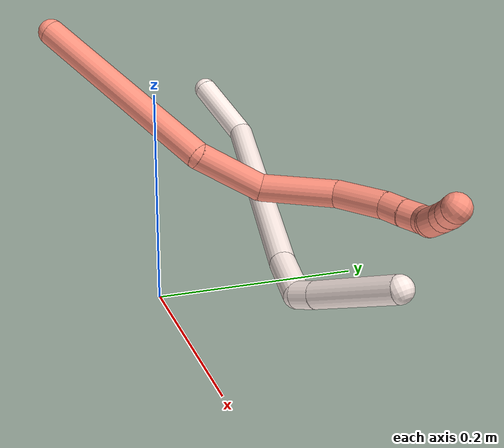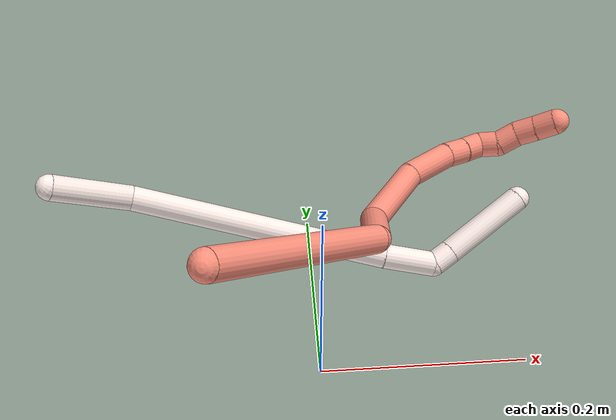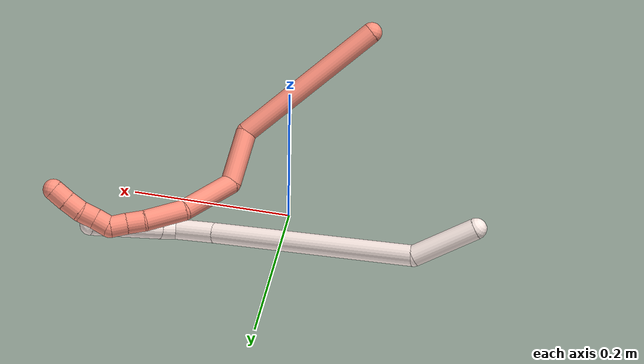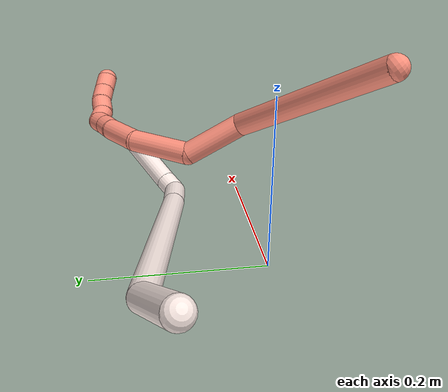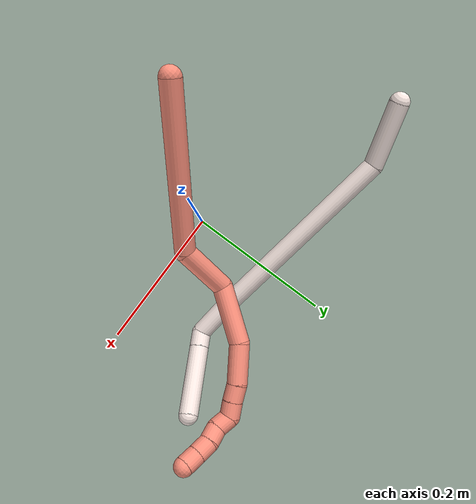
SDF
<sdf version="1.7">
 <world name="default">
  <model name="11">
   <static>0</static>
   <link name="11">
    <collision name="collision-cylinder-e_1_1_4">
     <pose>0.007926 -0.011685 0.037194 0.304399 0.200577 0.030867</pose>
     <geometry><cylinder><radius>0.0125</radius><length>0.079567</length></cylinder></geometry>
     <surface>
      <friction><ode><mu>1.16</mu><mu2>1.16</mu2><slip1>0</slip1><slip2>0</slip2></ode></friction>
      <contact><ode><kp>1e+06</kp><kd>1</kd><max_vel>0</max_vel><min_depth>0.001</min_depth></ode></contact>
     </surface>
    </collision>
    <visual name="visual-cylinder-e_1_1_4">
     <pose>0.007926 -0.011685 0.037194 0.304399 0.200577 0.030867</pose>
     <geometry><cylinder><radius>0.0125</radius><length>0.079567</length></cylinder></geometry>
     <material><ambient>1 0.933333 0.909804 1</ambient></material>
    </visual>
    <collision name="collision-cylinder-e_2_4_5">
     <pose>0.099896 -0.040515 0.170262 0.176958 0.711942 0.065943</pose>
     <geometry><cylinder><radius>0.0125</radius><length>0.257287</length></cylinder></geometry>
     <surface>
      <friction><ode><mu>1.16</mu><mu2>1.16</mu2><slip1>0</slip1><slip2>0</slip2></ode></friction>
      <contact><ode><kp>1e+06</kp><kd>1</kd><max_vel>0</max_vel><min_depth>0.001</min_depth></ode></contact>
     </surface>
    </collision>
    <visual name="visual-cylinder-e_2_4_5">
     <pose>0.099896 -0.040515 0.170262 0.176958 0.711942 0.065943</pose>
     <geometry><cylinder><radius>0.0125</radius><length>0.257287</length></cylinder></geometry>
     <material><ambient>1 0.933333 0.909804 1</ambient></material>
    </visual>
    <collision name="collision-cylinder-e_3_5_6">
     <pose>0.20063 -0.06276 0.285217 0.261169 0.701615 0.096046</pose>
     <geometry><cylinder><radius>0.0125</radius><length>0.051717</length></cylinder></geometry>
     <surface>
      <friction><ode><mu>1.16</mu><mu2>1.16</mu2><slip1>0</slip1><slip2>0</slip2></ode></friction>
      <contact><ode><kp>1e+06</kp><kd>1</kd><max_vel>0</max_vel><min_depth>0.001</min_depth></ode></contact>
     </surface>
    </collision>
    <visual name="visual-cylinder-e_3_5_6">
     <pose>0.20063 -0.06276 0.285217 0.261169 0.701615 0.096046</pose>
     <geometry><cylinder><radius>0.0125</radius><length>0.051717</length></cylinder></geometry>
     <material><ambient>1 0.933333 0.909804 1</ambient></material>
    </visual>
    <collision name="collision-cylinder-e_4_6_7">
     <pose>0.221567 -0.076659 0.308432 1.13161 0.411842 0.263768</pose>
     <geometry><cylinder><radius>0.0125</radius><length>0.021218</length></cylinder></geometry>
     <surface>
      <friction><ode><mu>1.16</mu><mu2>1.16</mu2><slip1>0</slip1><slip2>0</slip2></ode></friction>
      <contact><ode><kp>1e+06</kp><kd>1</kd><max_vel>0</max_vel><min_depth>0.001</min_depth></ode></contact>
     </surface>
    </collision>
    <visual name="visual-cylinder-e_4_6_7">
     <pose>0.221567 -0.076659 0.308432 1.13161 0.411842 0.263768</pose>
     <geometry><cylinder><radius>0.0125</radius><length>0.021218</length></cylinder></geometry>
     <material><ambient>1 0.933333 0.909804 1</ambient></material>
    </visual>
    <collision name="collision-cylinder-e_5_7_2">
     <pose>0.2445 -0.123495 0.328009 1.18512 0.427149 0.289989</pose>
     <geometry><cylinder><radius>0.0125</radius><length>0.090211</length></cylinder></geometry>
     <surface>
      <friction><ode><mu>1.16</mu><mu2>1.16</mu2><slip1>0</slip1><slip2>0</slip2></ode></friction>
      <contact><ode><kp>1e+06</kp><kd>1</kd><max_vel>0</max_vel><min_depth>0.001</min_depth></ode></contact>
     </surface>
    </collision>
    <visual name="visual-cylinder-e_5_7_2">
     <pose>0.2445 -0.123495 0.328009 1.18512 0.427149 0.289989</pose>
     <geometry><cylinder><radius>0.0125</radius><length>0.090211</length></cylinder></geometry>
     <material><ambient>1 0.933333 0.909804 1</ambient></material>
    </visual>
    <collision name="collision-sphere-2">
     <pose>0.263186 -0.161533 0.343453 0 -0 0</pose>
     <geometry><sphere><radius>0.0125</radius></sphere></geometry>
     <surface>
      <friction><ode><mu>1.16</mu><mu2>1.16</mu2><slip1>0</slip1><slip2>0</slip2></ode></friction>
      <contact><ode><kp>1e+06</kp><kd>1</kd><max_vel>0</max_vel><min_depth>0.001</min_depth></ode></contact>
     </surface>
    </collision>
    <visual name="visual-sphere-2">
     <pose>0.263186 -0.161533 0.343453 0 -0 0</pose>
     <geometry><sphere><radius>0.0125</radius></sphere></geometry>
     <material><ambient>1 0.933333 0.909804 1</ambient></material>
    </visual>
    <collision name="collision-sphere-7">
     <pose>0.225814 -0.085458 0.312565 0 -0 0</pose>
     <geometry><sphere><radius>0.0125</radius></sphere></geometry>
     <surface>
      <friction><ode><mu>1.16</mu><mu2>1.16</mu2><slip1>0</slip1><slip2>0</slip2></ode></friction>
      <contact><ode><kp>1e+06</kp><kd>1</kd><max_vel>0</max_vel><min_depth>0.001</min_depth></ode></contact>
     </surface>
    </collision>
    <visual name="visual-sphere-7">
     <pose>0.225814 -0.085458 0.312565 0 -0 0</pose>
     <geometry><sphere><radius>0.0125</radius></sphere></geometry>
     <material><ambient>1 0.933333 0.909804 1</ambient></material>
    </visual>
    <collision name="collision-sphere-6">
     <pose>0.21732 -0.06786 0.304298 0 -0 0</pose>
     <geometry><sphere><radius>0.0125</radius></sphere></geometry>
     <surface>
      <friction><ode><mu>1.16</mu><mu2>1.16</mu2><slip1>0</slip1><slip2>0</slip2></ode></friction>
      <contact><ode><kp>1e+06</kp><kd>1</kd><max_vel>0</max_vel><min_depth>0.001</min_depth></ode></contact>
     </surface>
    </collision>
    <visual name="visual-sphere-6">
     <pose>0.21732 -0.06786 0.304298 0 -0 0</pose>
     <geometry><sphere><radius>0.0125</radius></sphere></geometry>
     <material><ambient>1 0.933333 0.909804 1</ambient></material>
    </visual>
    <collision name="collision-sphere-5">
     <pose>0.183939 -0.05766 0.266136 0 -0 0</pose>
     <geometry><sphere><radius>0.0125</radius></sphere></geometry>
     <surface>
      <friction><ode><mu>1.16</mu><mu2>1.16</mu2><slip1>0</slip1><slip2>0</slip2></ode></friction>
      <contact><ode><kp>1e+06</kp><kd>1</kd><max_vel>0</max_vel><min_depth>0.001</min_depth></ode></contact>
     </surface>
    </collision>
    <visual name="visual-sphere-5">
     <pose>0.183939 -0.05766 0.266136 0 -0 0</pose>
     <geometry><sphere><radius>0.0125</radius></sphere></geometry>
     <material><ambient>1 0.933333 0.909804 1</ambient></material>
    </visual>
    <collision name="collision-sphere-1">
     <geometry><sphere><radius>0.0125</radius></sphere></geometry>
     <surface>
      <friction><ode><mu>1.16</mu><mu2>1.16</mu2><slip1>0</slip1><slip2>0</slip2></ode></friction>
      <contact><ode><kp>1e+06</kp><kd>1</kd><max_vel>0</max_vel><min_depth>0.001</min_depth></ode></contact>
     </surface>
    </collision>
    <visual name="visual-sphere-1">
     <geometry><sphere><radius>0.0125</radius></sphere></geometry>
     <material><ambient>1 0.933333 0.909804 1</ambient></material>
    </visual>
    <collision name="collision-sphere-4">
     <pose>0.015853 -0.02337 0.074388 0 -0 0</pose>
     <geometry><sphere><radius>0.0125</radius></sphere></geometry>
     <surface>
      <friction><ode><mu>1.16</mu><mu2>1.16</mu2><slip1>0</slip1><slip2>0</slip2></ode></friction>
      <contact><ode><kp>1e+06</kp><kd>1</kd><max_vel>0</max_vel><min_depth>0.001</min_depth></ode></contact>
     </surface>
    </collision>
    <visual name="visual-sphere-4">
     <pose>0.015853 -0.02337 0.074388 0 -0 0</pose>
     <geometry><sphere><radius>0.0125</radius></sphere></geometry>
     <material><ambient>1 0.933333 0.909804 1</ambient></material>
    </visual>
    <inertial>
     <pose>0.126933 -0.054733 0.195301 0 -0 0</pose>
     <mass>0.5</mass>
     <inertia>
      <ixx>0.001304</ixx>
      <ixy>0</ixy>
      <ixz>0</ixz>
      <iyy>0.001581</iyy>
      <iyz>0</iyz>
      <izz>-0.00069</izz>
     </inertia>
    </inertial>
   </link>
   <pose>-0.243262 0.121402 0.14348 -2.55322 -0.439759 -0.738998</pose>
  </model>
  <model name="16">
   <static>0</static>
   <link name="16">
    <collision name="collision-cylinder-e_1_1_4">
     <pose>0.05606 -0.005384 -0.077626 3.07234 0.624324 2.92774</pose>
     <geometry><cylinder><radius>0.0125</radius><length>0.191807</length></cylinder></geometry>
     <surface>
      <friction><ode><mu>1.16</mu><mu2>1.16</mu2><slip1>0</slip1><slip2>0</slip2></ode></friction>
      <contact><ode><kp>1e+06</kp><kd>1</kd><max_vel>0</max_vel><min_depth>0.001</min_depth></ode></contact>
     </surface>
    </collision>
    <visual name="visual-cylinder-e_1_1_4">
     <pose>0.05606 -0.005384 -0.077626 3.07234 0.624324 2.92774</pose>
     <geometry><cylinder><radius>0.0125</radius><length>0.191807</length></cylinder></geometry>
     <material><ambient>1 0.576471 0.494118 1</ambient></material>
    </visual>
    <collision name="collision-cylinder-e_2_4_5">
     <pose>0.111607 -0.005323 -0.187955 -2.97659 -0.01549 0.186784</pose>
     <geometry><cylinder><radius>0.0125</radius><length>0.066316</length></cylinder></geometry>
     <surface>
      <friction><ode><mu>1.16</mu><mu2>1.16</mu2><slip1>0</slip1><slip2>0</slip2></ode></friction>
      <contact><ode><kp>1e+06</kp><kd>1</kd><max_vel>0</max_vel><min_depth>0.001</min_depth></ode></contact>
     </surface>
    </collision>
    <visual name="visual-cylinder-e_2_4_5">
     <pose>0.111607 -0.005323 -0.187955 -2.97659 -0.01549 0.186784</pose>
     <geometry><cylinder><radius>0.0125</radius><length>0.066316</length></cylinder></geometry>
     <material><ambient>1 0.576471 0.494118 1</ambient></material>
    </visual>
    <collision name="collision-cylinder-e_3_5_6">
     <pose>0.130702 0.018265 -0.244689 -2.49492 0.577257 -1.45014</pose>
     <geometry><cylinder><radius>0.0125</radius><length>0.071864</length></cylinder></geometry>
     <surface>
      <friction><ode><mu>1.16</mu><mu2>1.16</mu2><slip1>0</slip1><slip2>0</slip2></ode></friction>
      <contact><ode><kp>1e+06</kp><kd>1</kd><max_vel>0</max_vel><min_depth>0.001</min_depth></ode></contact>
     </surface>
    </collision>
    <visual name="visual-cylinder-e_3_5_6">
     <pose>0.130702 0.018265 -0.244689 -2.49492 0.577257 -1.45014</pose>
     <geometry><cylinder><radius>0.0125</radius><length>0.071864</length></cylinder></geometry>
     <material><ambient>1 0.576471 0.494118 1</ambient></material>
    </visual>
    <collision name="collision-cylinder-e_4_6_7">
     <pose>0.169725 0.04394 -0.281532 -2.61011 0.91736 -2.13409</pose>
     <geometry><cylinder><radius>0.0125</radius><length>0.048901</length></cylinder></geometry>
     <surface>
      <friction><ode><mu>1.16</mu><mu2>1.16</mu2><slip1>0</slip1><slip2>0</slip2></ode></friction>
      <contact><ode><kp>1e+06</kp><kd>1</kd><max_vel>0</max_vel><min_depth>0.001</min_depth></ode></contact>
     </surface>
    </collision>
    <visual name="visual-cylinder-e_4_6_7">
     <pose>0.169725 0.04394 -0.281532 -2.61011 0.91736 -2.13409</pose>
     <geometry><cylinder><radius>0.0125</radius><length>0.048901</length></cylinder></geometry>
     <material><ambient>1 0.576471 0.494118 1</ambient></material>
    </visual>
    <collision name="collision-cylinder-e_5_7_8">
     <pose>0.198468 0.053063 -0.298899 -2.80575 1.0937 -2.59844</pose>
     <geometry><cylinder><radius>0.0125</radius><length>0.021003</length></cylinder></geometry>
     <surface>
      <friction><ode><mu>1.16</mu><mu2>1.16</mu2><slip1>0</slip1><slip2>0</slip2></ode></friction>
      <contact><ode><kp>1e+06</kp><kd>1</kd><max_vel>0</max_vel><min_depth>0.001</min_depth></ode></contact>
     </surface>
    </collision>
    <visual name="visual-cylinder-e_5_7_8">
     <pose>0.198468 0.053063 -0.298899 -2.80575 1.0937 -2.59844</pose>
     <geometry><cylinder><radius>0.0125</radius><length>0.021003</length></cylinder></geometry>
     <material><ambient>1 0.576471 0.494118 1</ambient></material>
    </visual>
    <collision name="collision-cylinder-e_6_8_9">
     <pose>0.216391 0.056674 -0.308244 -2.74224 1.02658 -2.45223</pose>
     <geometry><cylinder><radius>0.0125</radius><length>0.020091</length></cylinder></geometry>
     <surface>
      <friction><ode><mu>1.16</mu><mu2>1.16</mu2><slip1>0</slip1><slip2>0</slip2></ode></friction>
      <contact><ode><kp>1e+06</kp><kd>1</kd><max_vel>0</max_vel><min_depth>0.001</min_depth></ode></contact>
     </surface>
    </collision>
    <visual name="visual-cylinder-e_6_8_9">
     <pose>0.216391 0.056674 -0.308244 -2.74224 1.02658 -2.45223</pose>
     <geometry><cylinder><radius>0.0125</radius><length>0.020091</length></cylinder></geometry>
     <material><ambient>1 0.576471 0.494118 1</ambient></material>
    </visual>
    <collision name="collision-cylinder-e_7_9_10">
     <pose>0.234697 0.058309 -0.310647 0.160863 1.32656 0.1258</pose>
     <geometry><cylinder><radius>0.0125</radius><length>0.020017</length></cylinder></geometry>
     <surface>
      <friction><ode><mu>1.16</mu><mu2>1.16</mu2><slip1>0</slip1><slip2>0</slip2></ode></friction>
      <contact><ode><kp>1e+06</kp><kd>1</kd><max_vel>0</max_vel><min_depth>0.001</min_depth></ode></contact>
     </surface>
    </collision>
    <visual name="visual-cylinder-e_7_9_10">
     <pose>0.234697 0.058309 -0.310647 0.160863 1.32656 0.1258</pose>
     <geometry><cylinder><radius>0.0125</radius><length>0.020017</length></cylinder></geometry>
     <material><ambient>1 0.576471 0.494118 1</ambient></material>
    </visual>
    <collision name="collision-cylinder-e_8_10_11">
     <pose>0.253425 0.061972 -0.306739 -1.21213 1.12347 -0.822642</pose>
     <geometry><cylinder><radius>0.0125</radius><length>0.020001</length></cylinder></geometry>
     <surface>
      <friction><ode><mu>1.16</mu><mu2>1.16</mu2><slip1>0</slip1><slip2>0</slip2></ode></friction>
      <contact><ode><kp>1e+06</kp><kd>1</kd><max_vel>0</max_vel><min_depth>0.001</min_depth></ode></contact>
     </surface>
    </collision>
    <visual name="visual-cylinder-e_8_10_11">
     <pose>0.253425 0.061972 -0.306739 -1.21213 1.12347 -0.822642</pose>
     <geometry><cylinder><radius>0.0125</radius><length>0.020001</length></cylinder></geometry>
     <material><ambient>1 0.576471 0.494118 1</ambient></material>
    </visual>
    <collision name="collision-cylinder-e_9_11_12">
     <pose>0.271634 0.067858 -0.301739 -0.485124 1.16626 -0.323585</pose>
     <geometry><cylinder><radius>0.0125</radius><length>0.02</length></cylinder></geometry>
     <surface>
      <friction><ode><mu>1.16</mu><mu2>1.16</mu2><slip1>0</slip1><slip2>0</slip2></ode></friction>
      <contact><ode><kp>1e+06</kp><kd>1</kd><max_vel>0</max_vel><min_depth>0.001</min_depth></ode></contact>
     </surface>
    </collision>
    <visual name="visual-cylinder-e_9_11_12">
     <pose>0.271634 0.067858 -0.301739 -0.485124 1.16626 -0.323585</pose>
     <geometry><cylinder><radius>0.0125</radius><length>0.02</length></cylinder></geometry>
     <material><ambient>1 0.576471 0.494118 1</ambient></material>
    </visual>
    <collision name="collision-cylinder-e_10_12_2">
     <pose>0.28972 0.071802 -0.294198 -0.479111 1.09567 -0.295866</pose>
     <geometry><cylinder><radius>0.0125</radius><length>0.02</length></cylinder></geometry>
     <surface>
      <friction><ode><mu>1.16</mu><mu2>1.16</mu2><slip1>0</slip1><slip2>0</slip2></ode></friction>
      <contact><ode><kp>1e+06</kp><kd>1</kd><max_vel>0</max_vel><min_depth>0.001</min_depth></ode></contact>
     </surface>
    </collision>
    <visual name="visual-cylinder-e_10_12_2">
     <pose>0.28972 0.071802 -0.294198 -0.479111 1.09567 -0.295866</pose>
     <geometry><cylinder><radius>0.0125</radius><length>0.02</length></cylinder></geometry>
     <material><ambient>1 0.576471 0.494118 1</ambient></material>
    </visual>
    <collision name="collision-sphere-2">
     <pose>0.298612 0.073911 -0.290138 0 -0 0</pose>
     <geometry><sphere><radius>0.0125</radius></sphere></geometry>
     <surface>
      <friction><ode><mu>1.16</mu><mu2>1.16</mu2><slip1>0</slip1><slip2>0</slip2></ode></friction>
      <contact><ode><kp>1e+06</kp><kd>1</kd><max_vel>0</max_vel><min_depth>0.001</min_depth></ode></contact>
     </surface>
    </collision>
    <visual name="visual-sphere-2">
     <pose>0.298612 0.073911 -0.290138 0 -0 0</pose>
     <geometry><sphere><radius>0.0125</radius></sphere></geometry>
     <material><ambient>1 0.576471 0.494118 1</ambient></material>
    </visual>
    <collision name="collision-sphere-12">
     <pose>0.280827 0.069693 -0.298257 0 -0 0</pose>
     <geometry><sphere><radius>0.0125</radius></sphere></geometry>
     <surface>
      <friction><ode><mu>1.16</mu><mu2>1.16</mu2><slip1>0</slip1><slip2>0</slip2></ode></friction>
      <contact><ode><kp>1e+06</kp><kd>1</kd><max_vel>0</max_vel><min_depth>0.001</min_depth></ode></contact>
     </surface>
    </collision>
    <visual name="visual-sphere-12">
     <pose>0.280827 0.069693 -0.298257 0 -0 0</pose>
     <geometry><sphere><radius>0.0125</radius></sphere></geometry>
     <material><ambient>1 0.576471 0.494118 1</ambient></material>
    </visual>
    <collision name="collision-sphere-11">
     <pose>0.262441 0.066022 -0.305221 0 -0 0</pose>
     <geometry><sphere><radius>0.0125</radius></sphere></geometry>
     <surface>
      <friction><ode><mu>1.16</mu><mu2>1.16</mu2><slip1>0</slip1><slip2>0</slip2></ode></friction>
      <contact><ode><kp>1e+06</kp><kd>1</kd><max_vel>0</max_vel><min_depth>0.001</min_depth></ode></contact>
     </surface>
    </collision>
    <visual name="visual-sphere-11">
     <pose>0.262441 0.066022 -0.305221 0 -0 0</pose>
     <geometry><sphere><radius>0.0125</radius></sphere></geometry>
     <material><ambient>1 0.576471 0.494118 1</ambient></material>
    </visual>
    <collision name="collision-sphere-10">
     <pose>0.244409 0.057921 -0.308258 0 -0 0</pose>
     <geometry><sphere><radius>0.0125</radius></sphere></geometry>
     <surface>
      <friction><ode><mu>1.16</mu><mu2>1.16</mu2><slip1>0</slip1><slip2>0</slip2></ode></friction>
      <contact><ode><kp>1e+06</kp><kd>1</kd><max_vel>0</max_vel><min_depth>0.001</min_depth></ode></contact>
     </surface>
    </collision>
    <visual name="visual-sphere-10">
     <pose>0.244409 0.057921 -0.308258 0 -0 0</pose>
     <geometry><sphere><radius>0.0125</radius></sphere></geometry>
     <material><ambient>1 0.576471 0.494118 1</ambient></material>
    </visual>
    <collision name="collision-sphere-9">
     <pose>0.224986 0.058697 -0.313036 0 -0 0</pose>
     <geometry><sphere><radius>0.0125</radius></sphere></geometry>
     <surface>
      <friction><ode><mu>1.16</mu><mu2>1.16</mu2><slip1>0</slip1><slip2>0</slip2></ode></friction>
      <contact><ode><kp>1e+06</kp><kd>1</kd><max_vel>0</max_vel><min_depth>0.001</min_depth></ode></contact>
     </surface>
    </collision>
    <visual name="visual-sphere-9">
     <pose>0.224986 0.058697 -0.313036 0 -0 0</pose>
     <geometry><sphere><radius>0.0125</radius></sphere></geometry>
     <material><ambient>1 0.576471 0.494118 1</ambient></material>
    </visual>
    <collision name="collision-sphere-4">
     <pose>0.11212 -0.010768 -0.155251 0 -0 0</pose>
     <geometry><sphere><radius>0.0125</radius></sphere></geometry>
     <surface>
      <friction><ode><mu>1.16</mu><mu2>1.16</mu2><slip1>0</slip1><slip2>0</slip2></ode></friction>
      <contact><ode><kp>1e+06</kp><kd>1</kd><max_vel>0</max_vel><min_depth>0.001</min_depth></ode></contact>
     </surface>
    </collision>
    <visual name="visual-sphere-4">
     <pose>0.11212 -0.010768 -0.155251 0 -0 0</pose>
     <geometry><sphere><radius>0.0125</radius></sphere></geometry>
     <material><ambient>1 0.576471 0.494118 1</ambient></material>
    </visual>
    <collision name="collision-sphere-1">
     <geometry><sphere><radius>0.0125</radius></sphere></geometry>
     <surface>
      <friction><ode><mu>1.16</mu><mu2>1.16</mu2><slip1>0</slip1><slip2>0</slip2></ode></friction>
      <contact><ode><kp>1e+06</kp><kd>1</kd><max_vel>0</max_vel><min_depth>0.001</min_depth></ode></contact>
     </surface>
    </collision>
    <visual name="visual-sphere-1">
     <geometry><sphere><radius>0.0125</radius></sphere></geometry>
     <material><ambient>1 0.576471 0.494118 1</ambient></material>
    </visual>
    <collision name="collision-sphere-8">
     <pose>0.207797 0.054652 -0.303452 0 -0 0</pose>
     <geometry><sphere><radius>0.0125</radius></sphere></geometry>
     <surface>
      <friction><ode><mu>1.16</mu><mu2>1.16</mu2><slip1>0</slip1><slip2>0</slip2></ode></friction>
      <contact><ode><kp>1e+06</kp><kd>1</kd><max_vel>0</max_vel><min_depth>0.001</min_depth></ode></contact>
     </surface>
    </collision>
    <visual name="visual-sphere-8">
     <pose>0.207797 0.054652 -0.303452 0 -0 0</pose>
     <geometry><sphere><radius>0.0125</radius></sphere></geometry>
     <material><ambient>1 0.576471 0.494118 1</ambient></material>
    </visual>
    <collision name="collision-sphere-5">
     <pose>0.111093 0.000123 -0.220658 0 -0 0</pose>
     <geometry><sphere><radius>0.0125</radius></sphere></geometry>
     <surface>
      <friction><ode><mu>1.16</mu><mu2>1.16</mu2><slip1>0</slip1><slip2>0</slip2></ode></friction>
      <contact><ode><kp>1e+06</kp><kd>1</kd><max_vel>0</max_vel><min_depth>0.001</min_depth></ode></contact>
     </surface>
    </collision>
    <visual name="visual-sphere-5">
     <pose>0.111093 0.000123 -0.220658 0 -0 0</pose>
     <geometry><sphere><radius>0.0125</radius></sphere></geometry>
     <material><ambient>1 0.576471 0.494118 1</ambient></material>
    </visual>
    <collision name="collision-sphere-6">
     <pose>0.150311 0.036407 -0.268719 0 -0 0</pose>
     <geometry><sphere><radius>0.0125</radius></sphere></geometry>
     <surface>
      <friction><ode><mu>1.16</mu><mu2>1.16</mu2><slip1>0</slip1><slip2>0</slip2></ode></friction>
      <contact><ode><kp>1e+06</kp><kd>1</kd><max_vel>0</max_vel><min_depth>0.001</min_depth></ode></contact>
     </surface>
    </collision>
    <visual name="visual-sphere-6">
     <pose>0.150311 0.036407 -0.268719 0 -0 0</pose>
     <geometry><sphere><radius>0.0125</radius></sphere></geometry>
     <material><ambient>1 0.576471 0.494118 1</ambient></material>
    </visual>
    <collision name="collision-sphere-7">
     <pose>0.189139 0.051473 -0.294346 0 -0 0</pose>
     <geometry><sphere><radius>0.0125</radius></sphere></geometry>
     <surface>
      <friction><ode><mu>1.16</mu><mu2>1.16</mu2><slip1>0</slip1><slip2>0</slip2></ode></friction>
      <contact><ode><kp>1e+06</kp><kd>1</kd><max_vel>0</max_vel><min_depth>0.001</min_depth></ode></contact>
     </surface>
    </collision>
    <visual name="visual-sphere-7">
     <pose>0.189139 0.051473 -0.294346 0 -0 0</pose>
     <geometry><sphere><radius>0.0125</radius></sphere></geometry>
     <material><ambient>1 0.576471 0.494118 1</ambient></material>
    </visual>
    <inertial>
     <pose>0.130713 0.019057 -0.190896 0 -0 0</pose>
     <mass>0.5</mass>
     <inertia>
      <ixx>-0.00035</ixx>
      <ixy>0</ixy>
      <ixz>0</ixz>
      <iyy>0.000663</iyy>
      <iyz>0</iyz>
      <izz>-0.000399</izz>
     </inertia>
    </inertial>
   </link>
   <pose>-0.083209 -0.07772 0.247735 0.8691 -0.124064 -0.059636</pose>
  </model>
 </world>
</sdf>
